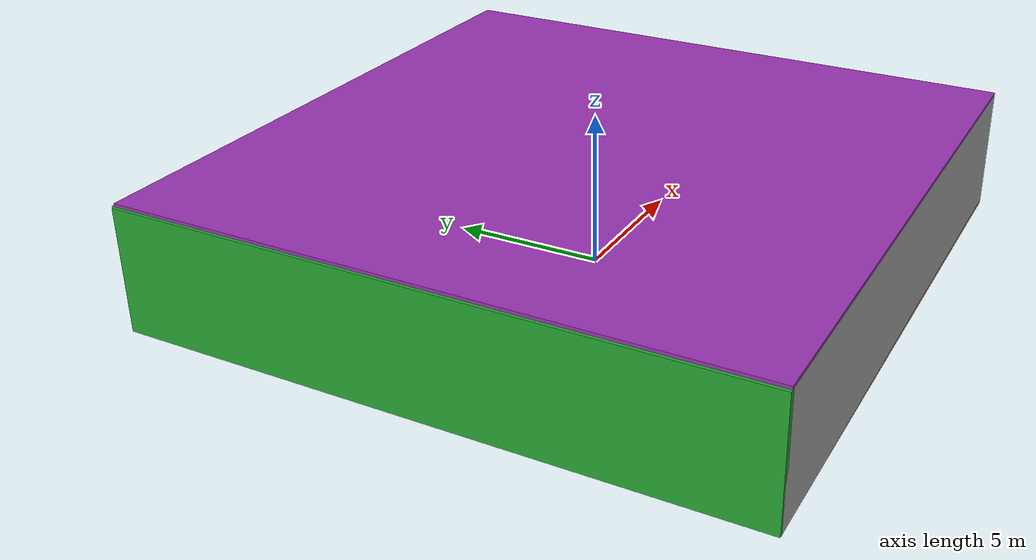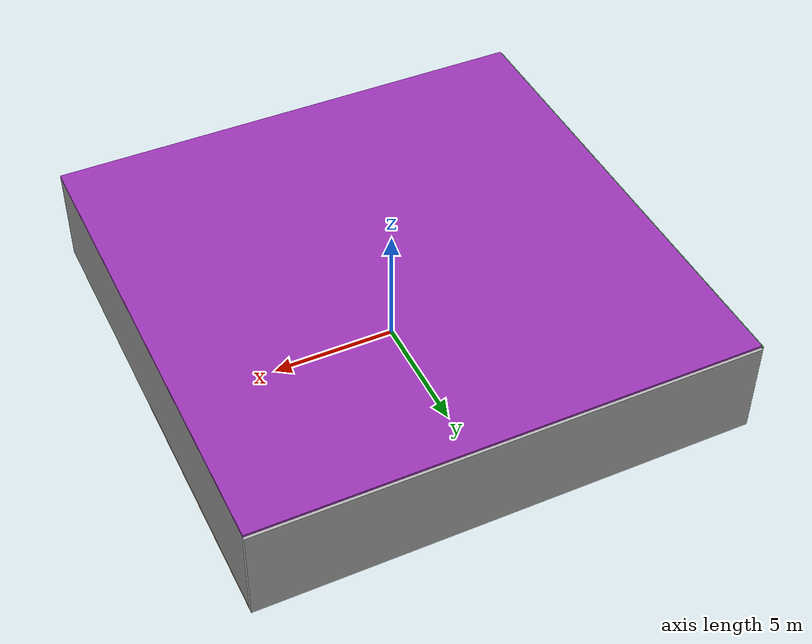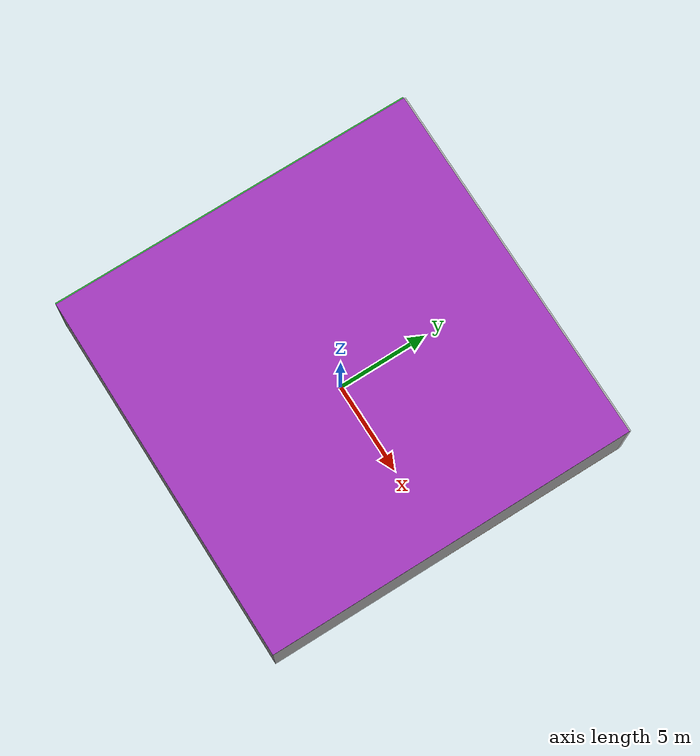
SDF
<sdf version="1.4">
 <world name="default">
  <physics type="ode">
   <max_step_size>0.001</max_step_size>
   <real_time_factor>1</real_time_factor>
   <real_time_update_rate>1000</real_time_update_rate>
   <gravity>0 0 -9.8</gravity>
  </physics>
  <scene><ambient>0.4 0.4 0.4 1</ambient><background>0.7 0.7 0.7 1</background><shadows>1</shadows></scene>
  <model name="Surrounding">
   <static>1</static>
   <link name="Ceiling">
    <collision name="Ceiling_Collision"><geometry><box><size>20 20 0.1</size></box></geometry></collision>
    <visual name="Ceiling_Visual">
     <geometry><box><size>20 20 0.1</size></box></geometry>
     <material>
      <script><uri>file://media/materials/scripts/gazebo.material</uri><name>Gazebo/Purple</name></script>
     </material>
    </visual>
    <pose>0 0 4.05 0 0 0</pose>
   </link>
   <link name="Wall_South">
    <collision name="Wall_South_Collision">
     <geometry><box><size>20 0 4</size></box></geometry>
     <pose>0 0 2 0 -0 0</pose>
    </collision>
    <visual name="Wall_South_Visual">
     <pose>0 0 2 0 -0 0</pose>
     <geometry><box><size>20 0 4</size></box></geometry>
     <material>
      <script><uri>file://media/materials/scripts/gazebo.material</uri><name>Gazebo/LightOff</name></script>
     </material>
    </visual>
    <velocity_decay><linear>0</linear><angular>0</angular></velocity_decay>
    <pose>0 -10 0 0 -0 0</pose>
   </link>
   <link name="Wall_East">
    <collision name="Wall_21_Collision">
     <geometry><box><size>20 0 4</size></box></geometry>
     <pose>0 0 2 0 -0 0</pose>
    </collision>
    <visual name="Wall_21_Visual">
     <pose>0 0 2 0 -0 0</pose>
     <geometry><box><size>20 0 4</size></box></geometry>
     <material>
      <script><uri>file://media/materials/scripts/gazebo.material</uri><name>Gazebo/Grey</name></script>
     </material>
    </visual>
    <velocity_decay><linear>0</linear><angular>0</angular></velocity_decay>
    <pose>10 0 0 0 -0 1.5708</pose>
   </link>
   <link name="Wall_North">
    <collision name="Wall_22_Collision">
     <geometry><box><size>20 0.2 4</size></box></geometry>
     <pose>0 0 2 0 -0 0</pose>
    </collision>
    <visual name="Wall_22_Visual">
     <pose>0 0 2 0 -0 0</pose>
     <geometry><box><size>20 0.2 4</size></box></geometry>
     <material>
      <script><uri>file://media/materials/scripts/gazebo.material</uri><name>Gazebo/PioneerBody</name></script>
     </material>
    </visual>
    <velocity_decay><linear>0</linear><angular>0</angular></velocity_decay>
    <pose>0 10 0 0 -0 0</pose>
   </link>
   <link name="Wall_West">
    <collision name="Wall_23_Collision">
     <geometry><box><size>20 0.2 4</size></box></geometry>
     <pose>0 0 2 0 -0 0</pose>
    </collision>
    <visual name="Wall_23_Visual">
     <pose>0 0 2 0 -0 0</pose>
     <geometry><box><size>20 0.2 4</size></box></geometry>
     <material>
      <script><uri>file://media/materials/scripts/gazebo.material</uri><name>Gazebo/GreenGlow</name></script>
     </material>
    </visual>
    <velocity_decay><linear>0</linear><angular>0</angular></velocity_decay>
    <pose>-10 0 0 0 0 -1.5708</pose>
   </link>
   <link name="Ground_link">
    <collision name="collision">
     <pose>0 0 .05 0 -0 0</pose>
     <geometry><box><size>20 20 0.1</size></box></geometry>
    </collision>
    <visual name="visual">
     <pose>0 0 .05 0 -0 0</pose>
     <geometry><box><size>20 20 0.1</size></box></geometry>
     <material>
      <script><uri>file://media/materials/scripts/gazebo.material</uri><name>Gazebo/WoodFloor</name></script>
     </material>
    </visual>
   </link>
   <static>1</static>
  </model>
  <spherical_coordinates>
   <surface_model>EARTH_WGS84</surface_model>
   <latitude_deg>0</latitude_deg>
   <longitude_deg>0</longitude_deg>
   <elevation>0</elevation>
   <heading_deg>0</heading_deg>
  </spherical_coordinates>
  <light name="lightball_0" type="diffuse">
   <diffuse>0.8 0.8 0.8 1</diffuse>
   <specular>0.2 0.2 0.2 1</specular>
   <attenuation>
    <range>100</range>
    <constant>0.7</constant>
    <linear>0.01</linear>
    <quadratic>0.001</quadratic>
   </attenuation>
   <direction>-0.5 0.1 -0.9</direction>
   <pose>-3.1154497563 -0.739361091521 1.49360647839 0 0 0</pose>
  </light>
  <light name="lightball_1" type="diffuse">
   <diffuse>0.8 0.8 0.8 1</diffuse>
   <specular>0.2 0.2 0.2 1</specular>
   <attenuation>
    <range>100</range>
    <constant>0.7</constant>
    <linear>0.01</linear>
    <quadratic>0.001</quadratic>
   </attenuation>
   <direction>-0.5 0.1 -0.9</direction>
   <pose>2.82176220754 -0.584132930605 3.77053848516 0 0 0</pose>
  </light>
  <light name="lightball_2" type="diffuse">
   <diffuse>0.8 0.8 0.8 1</diffuse>
   <specular>0.2 0.2 0.2 1</specular>
   <attenuation>
    <range>100</range>
    <constant>0.7</constant>
    <linear>0.01</linear>
    <quadratic>0.001</quadratic>
   </attenuation>
   <direction>-0.5 0.1 -0.9</direction>
   <pose>1.49846870781 -0.909339904334 0.875564964932 0 0 0</pose>
  </light>
  <include><uri>model://table</uri><pose>-6.59675138001 -8.66831761619 0 0 0 2.66064175245</pose></include>
  <include>
   <uri>model://textured_shapes</uri>
   <pose>-6.57667482016 4.89805197396 0 0 0 1.11480307393</pose>
  </include>
  <include>
   <uri>model://construction_cone</uri>
   <pose>2.13142420039 8.42757607287 0 0 0 1.45193287416</pose>
  </include>
  <include>
   <uri>model://construction_cone</uri>
   <pose>6.70893976303 0.336681733787 0 0 0 3.02121087447</pose>
  </include>
  <include><uri>model://cabinet</uri><pose>7.20841987278 8.41945265981 0 0 0 2.23486679223</pose></include>
 </world>
</sdf>

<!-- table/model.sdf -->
<sdf version="1.5">
  <model name="table">
    <static>true</static>
    <link name="link">
      <collision name="surface">
        <pose>0 0 1.0 0 0 0</pose>
        <geometry>
          <box>
            <size>1.5 0.8 0.03</size>
          </box>
        </geometry>
        <surface>
          <friction>
            <ode>
              <mu>0.6</mu>
              <mu2>0.6</mu2>
            </ode>
          </friction>
        </surface>
      </collision>
      <visual name="visual1">
        <pose>0 0 1.0 0 0 0</pose>
        <geometry>
          <box>
            <size>1.5 0.8 0.03</size>
          </box>
        </geometry>
        <material>
          <script>
            <uri>model://media/materials/scripts/gazebo.material</uri>
            <name>Gazebo/Wood</name>
          </script>
        </material>
      </visual>
      <collision name="front_left_leg">
        <pose>0.68 0.38 0.5 0 0 0</pose>
        <geometry>
          <cylinder>
            <radius>0.02</radius>
            <length>1.0</length>
          </cylinder>
        </geometry>
      </collision>
      <visual name="front_left_leg">
        <pose>0.68 0.38 0.5 0 0 0</pose>
        <geometry>
          <cylinder>
            <radius>0.02</radius>
            <length>1.0</length>
          </cylinder>
        </geometry>
        <material>
          <script>
            <uri>model://media/materials/scripts/gazebo.material</uri>
            <name>Gazebo/Grey</name>
          </script>
        </material>
      </visual>
      <collision name="front_right_leg">
        <pose>0.68 -0.38 0.5 0 0 0</pose>
        <geometry>
          <cylinder>
            <radius>0.02</radius>
            <length>1.0</length>
          </cylinder>
        </geometry>
      </collision>
      <visual name="front_right_leg">
        <pose>0.68 -0.38 0.5 0 0 0</pose>
        <geometry>
          <cylinder>
            <radius>0.02</radius>
            <length>1.0</length>
          </cylinder>
        </geometry>
        <material>
          <script>
            <uri>model://media/materials/scripts/gazebo.material</uri>
            <name>Gazebo/Grey</name>
          </script>
        </material>
      </visual>
      <collision name="back_right_leg">
        <pose>-0.68 -0.38 0.5 0 0 0</pose>
        <geometry>
          <cylinder>
            <radius>0.02</radius>
            <length>1.0</length>
          </cylinder>
        </geometry>
      </collision>
      <visual name="back_right_leg">
        <pose>-0.68 -0.38 0.5 0 0 0</pose>
        <geometry>
          <cylinder>
            <radius>0.02</radius>
            <length>1.0</length>
          </cylinder>
        </geometry>
        <material>
          <script>
            <uri>model://media/materials/scripts/gazebo.material</uri>
            <name>Gazebo/Grey</name>
          </script>
        </material>
      </visual>
      <collision name="back_left_leg">
        <pose>-0.68 0.38 0.5 0 0 0</pose>
        <geometry>
          <cylinder>
            <radius>0.02</radius>
            <length>1.0</length>
          </cylinder>
        </geometry>
      </collision>
      <visual name="back_left_leg">
        <pose>-0.68 0.38 0.5 0 0 0</pose>
        <geometry>
          <cylinder>
            <radius>0.02</radius>
            <length>1.0</length>
          </cylinder>
        </geometry>
        <material>
          <script>
            <uri>model://media/materials/scripts/gazebo.material</uri>
            <name>Gazebo/Grey</name>
          </script>
        </material>
      </visual>
    </link>
  </model>
</sdf>

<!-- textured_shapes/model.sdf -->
<sdf version="1.6">
  <model name="textured_shapes">
    <pose>0 0 0.5 0 0 0</pose>
    <link name="box">
      <pose>0 -1.5 0 0 0 0</pose>
      <collision name="collision">
        <geometry>
          <box>
            <size>1 1 1</size>
          </box>
        </geometry>
      </collision>
      <visual name="visual">
        <geometry>
          <box>
            <size>1 1 1</size>
          </box>
        </geometry>
        <material>
          <script>
            <uri>model://../model_source/models/textured_shapes/materials/scripts</uri>
            <uri>model://../model_source/models/textured_shapes/materials/textures</uri>
            <name>TexturedShape/Squares</name>
          </script>
        </material>
      </visual>
    </link>
    <link name="sphere">
      <collision name="collision">
        <geometry>
          <sphere>
            <radius>0.5</radius>
          </sphere>
        </geometry>
      </collision>
      <visual name="visual">
        <geometry>
          <sphere>
            <radius>0.5</radius>
          </sphere>
        </geometry>
        <material>
          <script>
            <uri>model://../model_source/models/textured_shapes/materials/scripts</uri>
            <uri>model://../model_source/models/textured_shapes/materials/textures</uri>
            <name>TexturedShape/Squares</name>
          </script>
        </material>
      </visual>
    </link>
    <link name="cylinder">
      <pose>0 1.5 0 0 0 0</pose>
      <collision name="collision">
        <geometry>
          <cylinder>
            <radius>0.5</radius>
            <length>1</length>
          </cylinder>
        </geometry>
      </collision>
      <visual name="visual">
        <geometry>
          <cylinder>
            <radius>0.5</radius>
            <length>1</length>
          </cylinder>
        </geometry>
        <material>
          <script>
            <uri>model://../model_source/models/textured_shapes/materials/scripts</uri>
            <uri>model://../model_source/models/textured_shapes/materials/textures</uri>
            <name>TexturedShape/Squares</name>
          </script>
        </material>
      </visual>
    </link>
  </model>
</sdf>

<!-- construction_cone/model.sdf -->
<sdf version="1.5">
  <model name="Construction Cone">
    <link name="link">
      <collision name="collision">
        <geometry>
          <mesh>
            <scale>10 10 10</scale>
            <uri>file://isr-testbed/construction_cone/meshes/construction_cone.dae</uri>
          </mesh>
        </geometry>
      </collision>
      <visual name="visual">
        <geometry>
          <mesh>
            <scale>10 10 10</scale>
            <uri>file://isr-testbed/construction_cone/meshes/construction_cone.dae</uri>
          </mesh>
        </geometry>
      </visual>
    </link>
  </model>
</sdf>

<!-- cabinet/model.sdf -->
<sdf version="1.5">
  <model name="cabinet">
    <static>true</static>
    <link name="cabinet_bottom_plate">
      <inertial>
        <pose>0 0 -1 0 0 0</pose>
        <inertia>
          <ixx>2.050000</ixx>
          <ixy>0</ixy>
          <ixz>0</ixz>
          <iyy>2.050000</iyy>
          <iyz>0</iyz>
          <izz>2.050000</izz>
        </inertia>
        <mass>25.000000</mass>
      </inertial>
      <collision name="cabinet_bottom_plate_geom">
        <pose>0 0 0.010000 0 0 0</pose>
        <geometry>
          <box>
            <size>0.450000 0.450000 0.020000</size>
          </box>
        </geometry>
      </collision>
      <visual name="cabinet_bottom_plate_geom_visual">
        <pose>0 0 0.010000 0 0 0</pose>
        <geometry>
          <box>
            <size>0.450000 0.450000 0.020000</size>
          </box>
        </geometry>
        <material>
          <script>
            <uri>model://media/materials/scripts/gazebo.material</uri>
            <name>Gazebo/Wood</name>
          </script>
        </material>
      </visual>
      <collision name="cabinet_bottom_plate_geom_cabinet_back_plate">
        <pose>0.235000 0 0.510000 0 0 0</pose>
        <geometry>
          <box>
            <size>0.020000 0.450000 1.020000</size>
          </box>
        </geometry>
      </collision>
      <visual name="cabinet_bottom_plate_geom_cabinet_back_plate_visual">
        <pose>0.235000 0 0.510000 0 0 0</pose>
        <geometry>
          <box>
            <size>0.020000 0.450000 1.020000</size>
          </box>
        </geometry>
        <material>
          <script>
            <uri>model://media/materials/scripts/gazebo.material</uri>
            <name>Gazebo/Wood</name>
          </script>
        </material>
      </visual>
      <collision name="cabinet_bottom_plate_geom_cabinet_left_plate">
        <pose>0 0.235000 0.510000 0 0 0</pose>
        <geometry>
          <box>
            <size>0.450000 0.020000 1.020000</size>
          </box>
        </geometry>
      </collision>
      <visual name="cabinet_bottom_plate_geom_cabinet_left_plate_visual">
        <pose>0 0.235000 0.510000 0 0 0</pose>
        <geometry>
          <box>
            <size>0.450000 0.020000 1.020000</size>
          </box>
        </geometry>
        <material>
          <script>
            <uri>model://media/materials/scripts/gazebo.material</uri>
            <name>Gazebo/Wood</name>
          </script>
        </material>
      </visual>
      <collision name="cabinet_bottom_plate_geom_cabinet_middle_plate">
        <pose>0 0 0.510000 0 0 0</pose>
        <geometry>
          <box>
            <size>0.450000 0.450000 0.020000</size>
          </box>
        </geometry>
      </collision>
      <visual name="cabinet_bottom_plate_geom_cabinet_middle_plate_visual">
        <pose>0 0 0.510000 0 0 0</pose>
        <geometry>
          <box>
            <size>0.450000 0.450000 0.020000</size>
          </box>
        </geometry>
        <material>
          <script>
            <uri>model://media/materials/scripts/gazebo.material</uri>
            <name>Gazebo/Wood</name>
          </script>
        </material>
      </visual>
      <collision name="cabinet_bottom_plate_geom_cabinet_right_plate">
        <pose>0 -0.235000 0.510000 0 0 0</pose>
        <geometry>
          <box>
            <size>0.450000 0.020000 1.020000</size>
          </box>
        </geometry>
      </collision>
      <visual name="cabinet_bottom_plate_geom_cabinet_right_plate_visual">
        <pose>0 -0.235000 0.510000 0 0 0</pose>
        <geometry>
          <box>
            <size>0.450000 0.020000 1.020000</size>
          </box>
        </geometry>
        <material>
          <script>
            <uri>model://media/materials/scripts/gazebo.material</uri>
            <name>Gazebo/Wood</name>
          </script>
        </material>
      </visual>
      <collision name="cabinet_bottom_plate_geom_cabinet_top_plate">
        <pose>0 0 1.010000 0 0 0</pose>
        <geometry>
          <box>
            <size>0.450000 0.450000 0.020000</size>
          </box>
        </geometry>
      </collision>
      <visual name="cabinet_bottom_plate_geom_cabinet_top_plate_visual">
        <pose>0 0 1.010000 0 0 0</pose>
        <geometry>
          <box>
            <size>0.450000 0.450000 0.020000</size>
          </box>
        </geometry>
        <material>
          <script>
            <uri>model://media/materials/scripts/gazebo.material</uri>
            <name>Gazebo/Wood</name>
          </script>
        </material>
      </visual>
    </link>
  </model>
</sdf>
